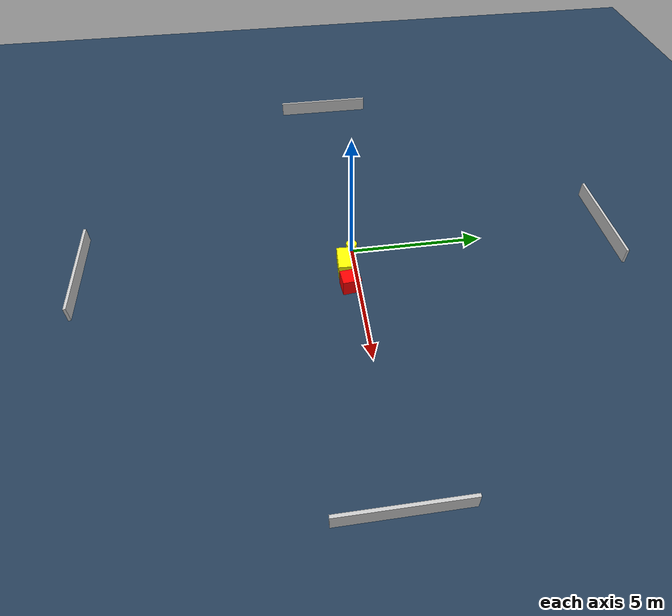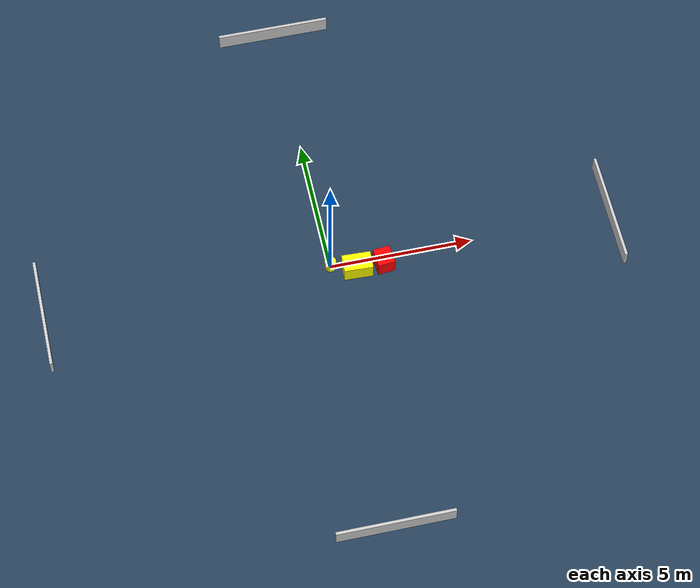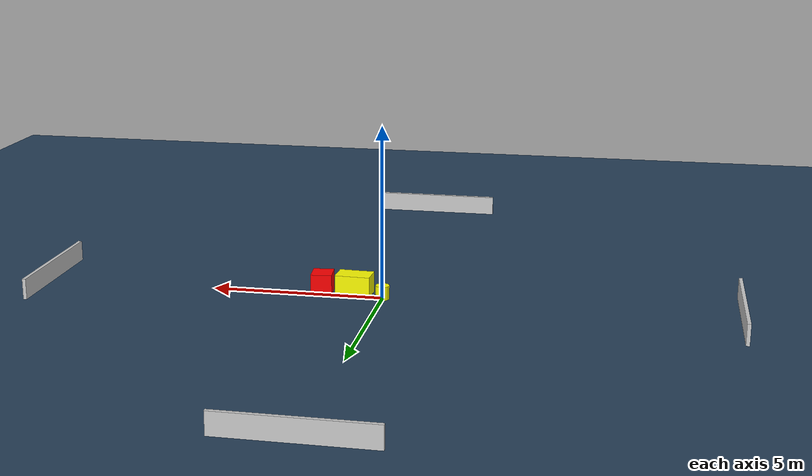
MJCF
<?xml version="1.0" ?>
<mujoco model="generated_environment">
  <option timestep="0.01" integrator="RK4" cone="elliptic"/>
  <default>
    <geom density="1"/>
  </default>
  <asset>
    <texture builtin="gradient" height="3072" name="skybox" rgb1="0.3 0.5 0.7" rgb2="0 0 0" type="skybox" width="512"/>
    <texture builtin="checker" height="300" name="groundplane" rgb1="0.2 0.3 0.4" rgb2="0.1 0.2 0.3" type="2d" width="300"/>
    <material name="groundplane" reflectance="0.2" texrepeat="5 5" texture="groundplane"/>
  </asset>
  <worldbody>
    <light dir="0 0 -1" directional="true" pos="0 0 1.5"/>
    <geom condim="3" friction="0.5 0.005 0.001" material="groundplane" name="floor" pos="0 0 0" size="0 0 0.05" type="plane"/>
    <body name="walls">
      <geom name="wall_1" condim="4" pos="-10.0 0.0 0.3" rgba="0.800000011920929 0.800000011920929 0.800000011920929 1.0" size="0.05 2.0 0.3" type="box"/>
      <geom name="wall_2" condim="4" pos="10.0 0.0 0.3" rgba="0.800000011920929 0.800000011920929 0.800000011920929 1.0" size="0.05 2.0 0.3" type="box"/>
      <geom name="wall_3" condim="4" pos="0.0 -10.0 0.3" rgba="0.800000011920929 0.800000011920929 0.800000011920929 1.0" size="2.0 0.05 0.3" type="box"/>
      <geom name="wall_4" condim="4" pos="0.0 10.0 0.3" rgba="0.800000011920929 0.800000011920929 0.800000011920929 1.0" size="2.0 0.05 0.3" type="box"/>
    </body>
    <body name="robot">
      <joint name="joint_x" type="slide" pos="0 0 0" axis="1 0 0"/>
      <joint name="joint_y" type="slide" pos="0 0 0" axis="0 1 0"/>
      <geom name="robot" type="cylinder" pos="0.0 0.0 0.2" size="0.2 0.2 0.0" mass="5.0" friction="1.0 0.005 0.0001" condim="4" rgba="1.0 1.0 0.0 1.0"/>
    </body>
    <body name="obstacle_1_movable">
      <geom name="obstacle_1_movable" condim="4" pos="0.8808760343202169 -0.3151477979318025 0.3" euler="0 0 267.75720373284423" friction="0.0 0.005 0.001" rgba="1.0 1.0 0.0 1.0" size="0.32115692442075433 0.5063956076427327 0.3" type="box" mass="0.1"/>
      <joint type="free"/>
    </body>
    <body name="obstacle_2_static">
      <geom name="obstacle_2_static" condim="4" pos="1.8239401963495452 -0.2924664402015603 0.3" euler="0 0 5.734022408809123" friction="0.0 0.005 0.001" rgba="1.0 0.0 0.0 1.0" size="0.30153483962788774 0.3341676564094235 0.3" type="box"/>
    </body>
  </worldbody>
  <actuator>
    <motor name="actuator_x" joint="joint_x" gear="1" ctrlrange="-1 1"/>
    <motor name="actuator_y" joint="joint_y" gear="1" ctrlrange="-1 1"/>
  </actuator>
</mujoco>
